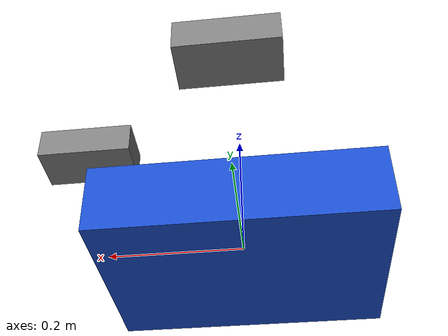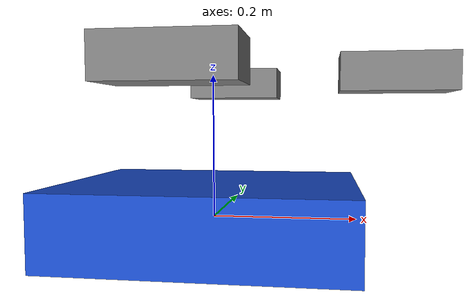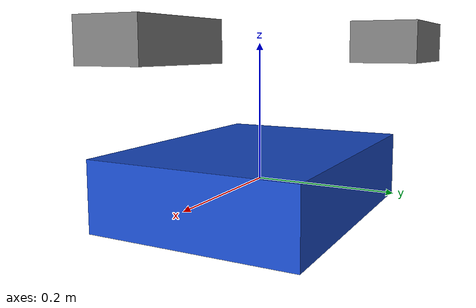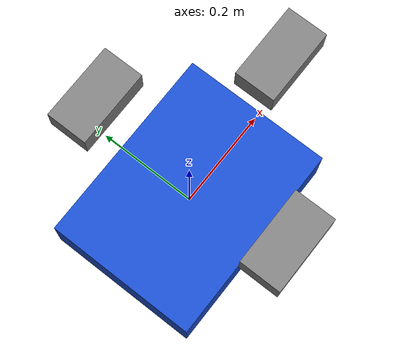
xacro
<?xml version="1.0"?>
<robot name="xacro2_practice_robot" xmlns:xacro="http://www.ros.org/wiki/xacro">

  <!--
    変更点:
    - $(dirname)/parts.xacro をやめる
    - robot.xacro と parts.xacro は同じディレクトリにあるため、
      parts.xacro を相対パスで直接includeする
  -->
  <xacro:include filename="parts.xacro"/>

  <!--
    変更点:
    - launch やコマンドラインから変更できる引数 sensor_height を定義する
    - デフォルト値は 0.2
  -->
  <xacro:arg name="sensor_height" default="0.2"/>

  <!-- base_link -->
  <link name="base_link">
    <visual>
      <origin xyz="0 0 0" rpy="0 0 0"/>
      <geometry>
        <box size="0.4 0.3 0.1"/>
      </geometry>
      <material name="base_blue">
        <color rgba="0.1 0.3 0.8 1.0"/>
      </material>
    </visual>
  </link>

  <!--
    変更点:
    - sensor_box マクロを3回呼び出す
    - z座標には xacro引数 sensor_height を渡す
  -->
  <xacro:sensor_box
    prefix="front_sensor"
    parent="base_link"
    x="0.25"
    y="0.0"
    z="$(arg sensor_height)"
  />

  <xacro:sensor_box
    prefix="left_sensor"
    parent="base_link"
    x="0.0"
    y="0.2"
    z="$(arg sensor_height)"
  />

  <xacro:sensor_box
    prefix="right_sensor"
    parent="base_link"
    x="0.0"
    y="-0.2"
    z="$(arg sensor_height)"
  />

</robot>

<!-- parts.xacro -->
<robot xmlns:xacro="http://www.ros.org/wiki/xacro">

  <!--
    sensor_box マクロ

    変更点:
    - 同じようなセンサーlink/joint定義を毎回書かずに済むように、
      xacro:macro で部品化する
    - prefix によって link名 / joint名 を切り替える
    - parent, x, y, z を外から指定できる
  -->
  <xacro:macro name="sensor_box" params="prefix parent x y z">

    <joint name="${prefix}_joint" type="fixed">
      <parent link="${parent}"/>
      <child link="${prefix}_link"/>
      <origin xyz="${x} ${y} ${z}" rpy="0 0 0"/>
    </joint>

    <link name="${prefix}_link">
      <visual>
        <origin xyz="0 0 0" rpy="0 0 0"/>
        <geometry>
          <box size="0.15 0.08 0.05"/>
        </geometry>
        <material name="${prefix}_gray">
          <color rgba="0.5 0.5 0.5 1.0"/>
        </material>
      </visual>
    </link>

  </xacro:macro>

</robot>
